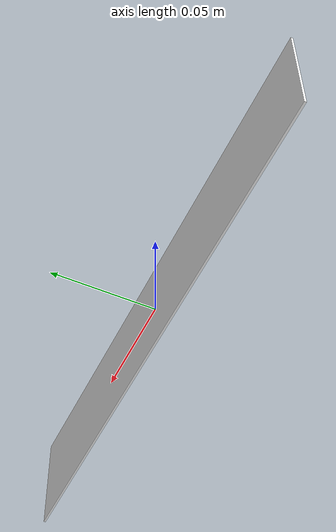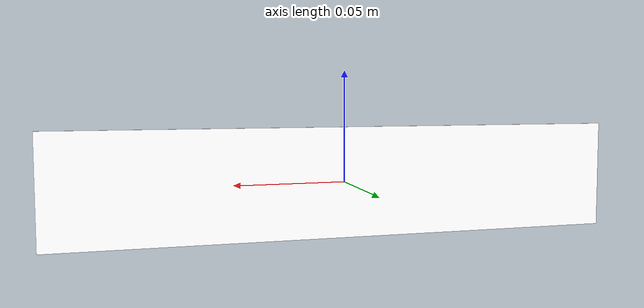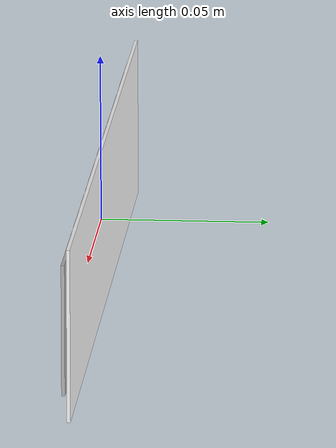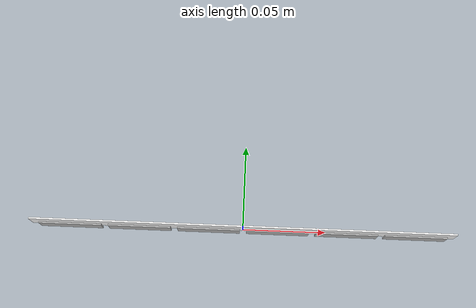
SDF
<?xml version="1.0" ?>
<sdf version="1.6">
  <model name="aruco_marker_panel">
    <static>true</static>

    <link name="marker_panel_link">
      <!-- Keep link origin at marker panel center -->
      <pose>0 0 0 0 0 0</pose>

      <!-- Optional thin white backing plate -->
      <visual name="white_back_plate">
        <pose>0 0.001 0 0 0 0</pose>
        <geometry>
          <box>
            <size>0.260 0.001 0.050</size>
          </box>
        </geometry>
        <material>
          <ambient>1 1 1 1</ambient>
          <diffuse>1 1 1 1</diffuse>
          <specular>0 0 0 1</specular>
        </material>
      </visual>

      <!-- Marker ID 0 -->
      <visual name="aruco_marker_0">
        <pose>-0.105 -0.001 0 0 0 0</pose>
        <geometry>
          <box>
            <size>0.038 0.001 0.038</size>
          </box>
        </geometry>
        <material>
          <script>
            <uri>model://aruco_marker_panel/materials/scripts</uri>
            <uri>model://aruco_marker_panel/materials/textures</uri>
            <name>Aruco/Marker0</name>
          </script>
        </material>
      </visual>

      <!-- Marker ID 1 -->
      <visual name="aruco_marker_1">
        <pose>-0.063 -0.001 0 0 0 0</pose>
        <geometry>
          <box>
            <size>0.038 0.001 0.038</size>
          </box>
        </geometry>
        <material>
          <script>
            <uri>model://aruco_marker_panel/materials/scripts</uri>
            <uri>model://aruco_marker_panel/materials/textures</uri>
            <name>Aruco/Marker1</name>
          </script>
        </material>
      </visual>

      <!-- Marker ID 2 -->
      <visual name="aruco_marker_2">
        <pose>-0.021 -0.001 0 0 0 0</pose>
        <geometry>
          <box>
            <size>0.038 0.001 0.038</size>
          </box>
        </geometry>
        <material>
          <script>
            <uri>model://aruco_marker_panel/materials/scripts</uri>
            <uri>model://aruco_marker_panel/materials/textures</uri>
            <name>Aruco/Marker2</name>
          </script>
        </material>
      </visual>

      <!-- Marker ID 3 -->
      <visual name="aruco_marker_3">
        <pose>0.021 -0.001 0 0 0 0</pose>
        <geometry>
          <box>
            <size>0.038 0.001 0.038</size>
          </box>
        </geometry>
        <material>
          <script>
            <uri>model://aruco_marker_panel/materials/scripts</uri>
            <uri>model://aruco_marker_panel/materials/textures</uri>
            <name>Aruco/Marker3</name>
          </script>
        </material>
      </visual>

      <!-- Marker ID 4 -->
      <visual name="aruco_marker_4">
        <pose>0.063 -0.001 0 0 0 0</pose>
        <geometry>
          <box>
            <size>0.038 0.001 0.038</size>
          </box>
        </geometry>
        <material>
          <script>
            <uri>model://aruco_marker_panel/materials/scripts</uri>
            <uri>model://aruco_marker_panel/materials/textures</uri>
            <name>Aruco/Marker4</name>
          </script>
        </material>
      </visual>

      <!-- Marker ID 5 -->
      <visual name="aruco_marker_5">
        <pose>0.105 -0.001 0 0 0 0</pose>
        <geometry>
          <box>
            <size>0.038 0.001 0.038</size>
          </box>
        </geometry>
        <material>
          <script>
            <uri>model://aruco_marker_panel/materials/scripts</uri>
            <uri>model://aruco_marker_panel/materials/textures</uri>
            <name>Aruco/Marker5</name>
          </script>
        </material>
      </visual>

      <collision name="marker_panel_collision">
        <pose>0 0 0 0 0 0</pose>
        <geometry>
          <box>
            <size>0.260 0.003 0.050</size>
          </box>
        </geometry>
      </collision>

    </link>
  </model>
</sdf>
